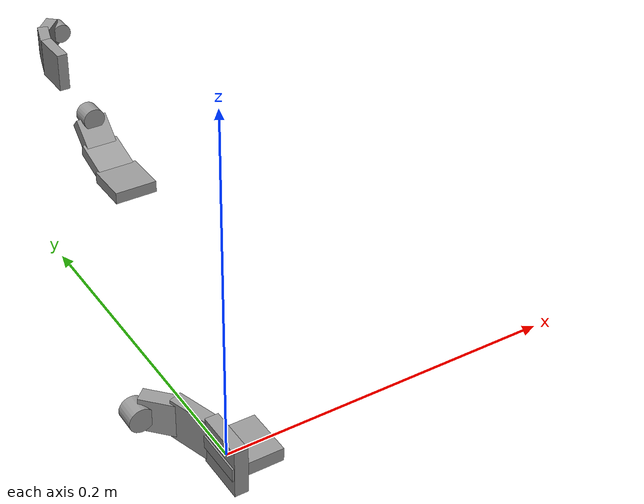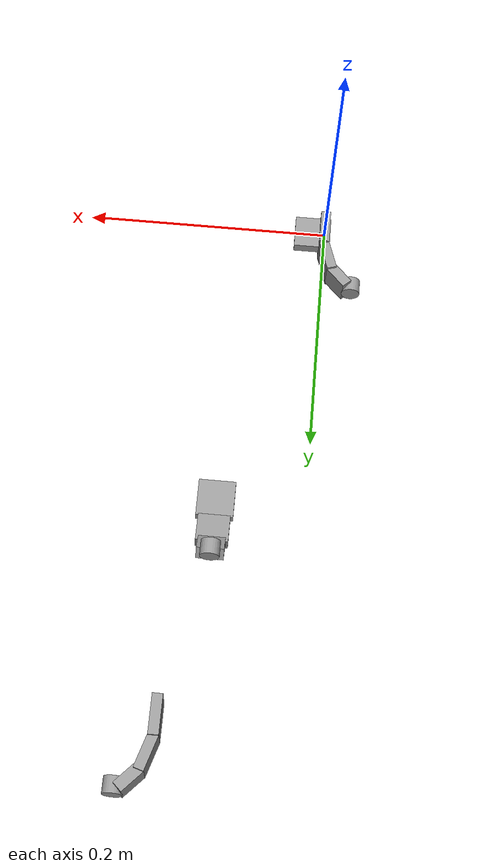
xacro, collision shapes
<?xml version="1.0" encoding='utf-8'?>
<robot xmlns:xacro="http://www.ros.org/wiki/xacro" name="softleg_cart">

<!-- MODELS -->
<xacro:include filename="$(find softleg_description)/model/softleg_cart.urdf.xacro"/>

<!-- WORLD -->
<link name="world">
</link>

<!-- FOOT 1 -->
<xacro:softleg_cart name="softleg_1" parent="world">
    <origin xyz="0 0 0" rpy="0 0 0"/>
</xacro:softleg_cart>

</robot>

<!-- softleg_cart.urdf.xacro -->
<robot name="softleg_cart" xmlns:xacro="http://www.ros.org/wiki/xacro">

    <!-- Properties -->
    <xacro:property name="const_pi" value="3.1415926535897931"/>
    <xacro:property name="cart_mass" value="0.0181"/>
    <xacro:property name="base_mass" value="0.0256"/>
    <xacro:property name="thigh_mass" value="0.0177"/>
    <xacro:property name="calf_mass" value="0.0177"/>
    <xacro:property name="velocity" value="100" />
    <xacro:property name="effort" value="100" />

    <xacro:property name="max_stiffness" value="10"/>
    <xacro:property name="min_stiffness" value="0"/>
    <xacro:property name="rate_stiffness" value="20"/>

    <!-- Gazebo and Transmission -->
    <xacro:include filename="$(find softleg_description)/model/softleg.gazebo.xacro"/>
    <xacro:include filename="$(find softleg_description)/model/softleg.transmission.xacro"/>

    <!-- Utilities -->
    <xacro:include filename="$(find softleg_description)/model/softleg_inertia.xacro"/>
    <xacro:include filename="$(find softleg_description)/model/softleg_materials.xacro"/>

    <!-- URDF -->
    <xacro:macro name="softleg_cart" params="parent name *origin">

        <!-- 0) Cart link - fixed to parent. -->
        <joint name="${parent}_${name}_fixed_joint" type="fixed">
            <origin xyz="0 0 0" rpy="0 0 0"/>
            <parent link="${parent}"/>
            <child link="${name}_cart_link"/>
        </joint>

        <link name="${name}_cart_link">
            <inertial>
                <xacro:insert_block name="really_negligible_inertia"/>
            </inertial>
            <visual>
                <origin xyz="0 0 0" rpy="0 0 ${180 * const_pi / 180}"/>
                <geometry>
                    <mesh filename="package://softleg_description/meshes/visual/cart.stl"
                          scale=" .001 .001 .001"/>
                </geometry>
                <material name="SoftLeg/Grey"/>
            </visual>
            <collision>
                <origin xyz="0.01 0 0" rpy="0 0 0"/>
                <geometry>
                    <box size="0.03 0.029 0.008"/>
                </geometry>
            </collision>
        </link>

        <!-- 1) Base link - moves along cart -->
        <joint name="${name}_cart_joint" type="prismatic">
            <origin xyz="0 -0.01 0" rpy="${90 * const_pi / 180} ${0 * const_pi / 180} ${90 * const_pi / 180}"/>
            <axis xyz="0 1 0"/>
            <limit lower="0" upper="5" effort="${effort}" velocity="${velocity}"/>
            <dynamics friction="0.0001" damping="0.0001"/>
            <parent link="${name}_cart_link"/>
            <child link="${name}_base_link"/>
        </joint>

        <link name="${name}_base_link">
            <inertial>
                <mass value="${base_mass}"/>
                <origin xyz="0.0356 -0.0011 -0.0078" rpy="0 0 0"/>
                <xacro:base_inertia/>
            </inertial>
            <visual>
                <origin xyz="0 0 0" rpy="0 0 0"/>
                <geometry>
                    <mesh filename="package://softleg_description/meshes/visual/base.stl"
                          scale=" .001 .001 .001"/>
                </geometry>
                <material name="SoftLeg/Grey"/>
            </visual>
            <collision>
                <origin xyz="0.01 0 0" rpy="0 0 0"/>
                <geometry>
                    <box size="0.03 0.029 0.008"/>
                </geometry>
            </collision>
            <collision>
                <origin xyz="0.0365 0 -0.00375" rpy="0 0.3 0"/>
                <geometry>
                    <box size="0.0275 0.025 0.008"/>
                </geometry>
            </collision>
            <collision>
                <origin xyz="0.05525 0 -0.0142" rpy="0 0.75 0"/>
                <geometry>
                    <box size="0.021 0.021 0.009"/>
                </geometry>
            </collision>
            <collision>
                <origin xyz="0.0605 0 -0.025" rpy="0 1.57 0"/>
                <geometry>
                    <cylinder length="0.0125" radius="0.0075"/>
                </geometry>
            </collision>
        </link>

        <!-- 1) Thigh link - rotates w.r.t base -->
        <joint name="${name}_hip_joint" type="revolute">
            <origin xyz="0.255 0 0.07" rpy="${90 * const_pi / 180} 0 0"/>
            <axis xyz="0 1 0"/>
            <limit lower="${-180 * const_pi / 180}" upper="${180* const_pi / 180}" effort="${effort}" velocity="${velocity}"/>
            <dynamics friction="0.0001" damping="0.0001"/>
            <parent link="${name}_base_link"/>
            <child link="${name}_thigh_link"/>
        </joint>

        <link name="${name}_thigh_link">
            <inertial>
                <mass value="${thigh_mass}"/>
                <origin xyz="0.0356 -0.0011 -0.0078" rpy="0 0 0"/>
                <xacro:thigh_inertia/>
            </inertial>
            <visual>
                <origin xyz="0.073 0 0" rpy="0 0 0"/>
                <geometry>
                    <mesh filename="package://softleg_description/meshes/visual/thigh.stl"
                          scale=" .001 .001 .001"/>
                </geometry>
                <material name="SoftLeg/Grey"/>
            </visual>
            <collision>
                <origin xyz="0.01 0 0" rpy="0 0 0"/>
                <geometry>
                    <box size="0.03 0.029 0.008"/>
                </geometry>
            </collision>
            <collision>
                <origin xyz="0.0365 0 -0.00375" rpy="0 0.3 0"/>
                <geometry>
                    <box size="0.0275 0.025 0.008"/>
                </geometry>
            </collision>
            <collision>
                <origin xyz="0.05525 0 -0.0142" rpy="0 0.75 0"/>
                <geometry>
                    <box size="0.021 0.021 0.009"/>
                </geometry>
            </collision>
            <collision>
                <origin xyz="0.0605 0 -0.025" rpy="0 1.57 0"/>
                <geometry>
                    <cylinder length="0.0125" radius="0.0075"/>
                </geometry>
            </collision>
        </link>

        <!-- 1) Calf link - rotates w.r.t thigh -->
        <joint name="${name}_knee_joint" type="revolute">
            <origin xyz="0.175 0.0275 0" rpy="${90 * const_pi / 180} 0 0"/>
            <axis xyz="0 0 -1"/>
            <limit lower="${-180 * const_pi / 180}" upper="${180* const_pi / 180}" effort="${effort}" velocity="${velocity}"/>
            <dynamics friction="0.0001" damping="0.0001"/>
            <parent link="${name}_thigh_link"/>
            <child link="${name}_calf_link"/>
        </joint>

        <link name="${name}_calf_link">
            <inertial>
                <mass value="${calf_mass}"/>
                <origin xyz="0.0356 -0.0011 -0.0078" rpy="0 0 0"/>
                <xacro:calf_inertia/>
            </inertial>
            <visual>
                <origin xyz="0 0 0" rpy="0 0 0"/>
                <geometry>
                    <mesh filename="package://softleg_description/meshes/visual/calf.stl"
                          scale=" .001 .001 .001"/>
                </geometry>
                <material name="SoftLeg/Grey"/>
            </visual>
            <collision>
                <origin xyz="0.01 0 0" rpy="0 0 0"/>
                <geometry>
                    <box size="0.03 0.029 0.008"/>
                </geometry>
            </collision>
            <collision>
                <origin xyz="0.0365 0 -0.00375" rpy="0 0.3 0"/>
                <geometry>
                    <box size="0.0275 0.025 0.008"/>
                </geometry>
            </collision>
            <collision>
                <origin xyz="0.05525 0 -0.0142" rpy="0 0.75 0"/>
                <geometry>
                    <box size="0.021 0.021 0.009"/>
                </geometry>
            </collision>
            <collision>
                <origin xyz="0.0605 0 -0.025" rpy="0 1.57 0"/>
                <geometry>
                    <cylinder length="0.0125" radius="0.0075"/>
                </geometry>
            </collision>
        </link>

        <!-- Gazebo elements -->
        <xacro:softleg_gazebo name="${name}"/>
        <xacro:softleg_transmission name="${name}"/>

    </xacro:macro>

</robot>

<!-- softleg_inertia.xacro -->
<robot xmlns:xacro="http://www.ros.org/wiki/xacro">

    <xacro:property name="negligible_mass" value="0.1"/>
    <xacro:property name="really_negligible_mass" value="0.00001"/>
    <xacro:property name="mm2tom2" value="0.000001"/>

    <!-- INERTIA MATRICES FOR LINKS (wrt frames in urdf inertial) -->

    <!-- Base -->
    <xacro:macro name="base_inertia">
        <inertia ixx="${mm2tom2 * 1698.4399}" iyy="${mm2tom2 * 20148.638}" izz="${mm2tom2 * 19764.513}"
                 ixy="${mm2tom2 * -983.90475}" ixz="${mm2tom2 * -1305.3791}" iyz="${mm2tom2 * 153.83174}"/>
    </xacro:macro>

    <!-- Thigh -->
    <xacro:macro name="thigh_inertia">
        <inertia ixx="${mm2tom2 * 750.26891}" iyy="${mm2tom2 * 4575.9812}" izz="${mm2tom2 * 5105.9889}"
                 ixy="${mm2tom2 * -1057.6540}" ixz="${mm2tom2 * 0.071507533}" iyz="${mm2tom2 * 0.32201257}"/>
    </xacro:macro>

    <!-- Calf -->
    <xacro:macro name="calf_inertia">
        <inertia ixx="${mm2tom2 * 60.006429}" iyy="${mm2tom2 * 472.43319}" izz="${mm2tom2 * 520.49867}"
                 ixy="${mm2tom2 * -119.84835e+02}" ixz="${mm2tom2 * 0.00036890095}" iyz="${mm2tom2 * 0.00012686113}"/>
    </xacro:macro>

    <!-- Simple cuboid -->
    <xacro:macro name="cuboid_inertia_def" params="width height length mass">
        <inertia ixx="${mass * (height * height + length * length) / 12}"
                 iyy="${mass * (width * width + length * length) / 12}"
                 izz="${mass * (width * width + height * height) / 12}"
                 ixy="0" iyz="0" ixz="0"/>
    </xacro:macro>

    <!-- Simple cylinder -->
    <xacro:macro name="cylinder_inertia_def" params="radius length mass">
        <inertia ixx="${mass * (3 * radius * radius + length * length) / 12}"
                 iyy="${mass * radius* radius / 2}"
                 izz="${mass * (3 * radius * radius + length * length) / 12}"
                 ixy="0" iyz="0" ixz="0"/>
    </xacro:macro>

    <!-- Negligible inertia for simulation -->
    <xacro:property name="negligible_inertia">
        <origin xyz="0 0 0"/>
        <mass value="${negligible_mass}"/>
        <inertia ixx="${mm2tom2 * 0.0001}" iyy="${mm2tom2 * 0.0001}" izz="${mm2tom2 * 0.0001}"
                 ixy="0.0" ixz="0.0" iyz="0.0"/>
    </xacro:property>

    <xacro:property name="really_negligible_inertia">
        <origin xyz="0 0 0"/>
        <mass value="${really_negligible_mass}"/>
        <inertia ixx="${mm2tom2 * 0.00001}" iyy="${mm2tom2 * 0.00001}" izz="${mm2tom2 * 0.00001}"
                 ixy="0.0" ixz="0.0" iyz="0.0"/>
    </xacro:property>

</robot>
